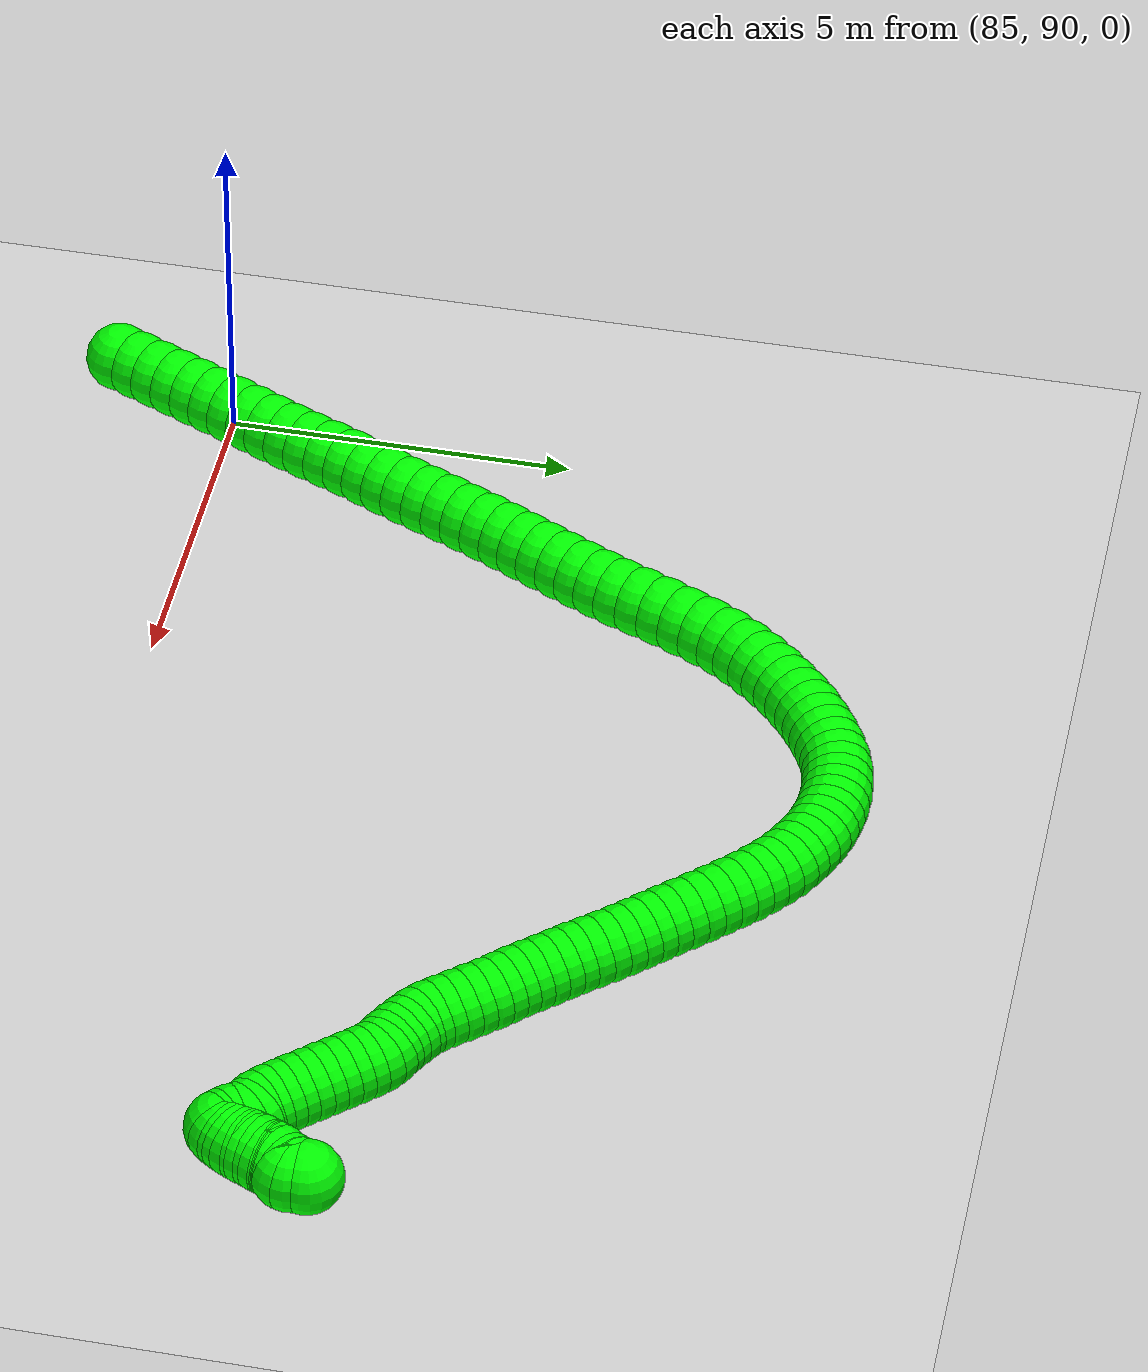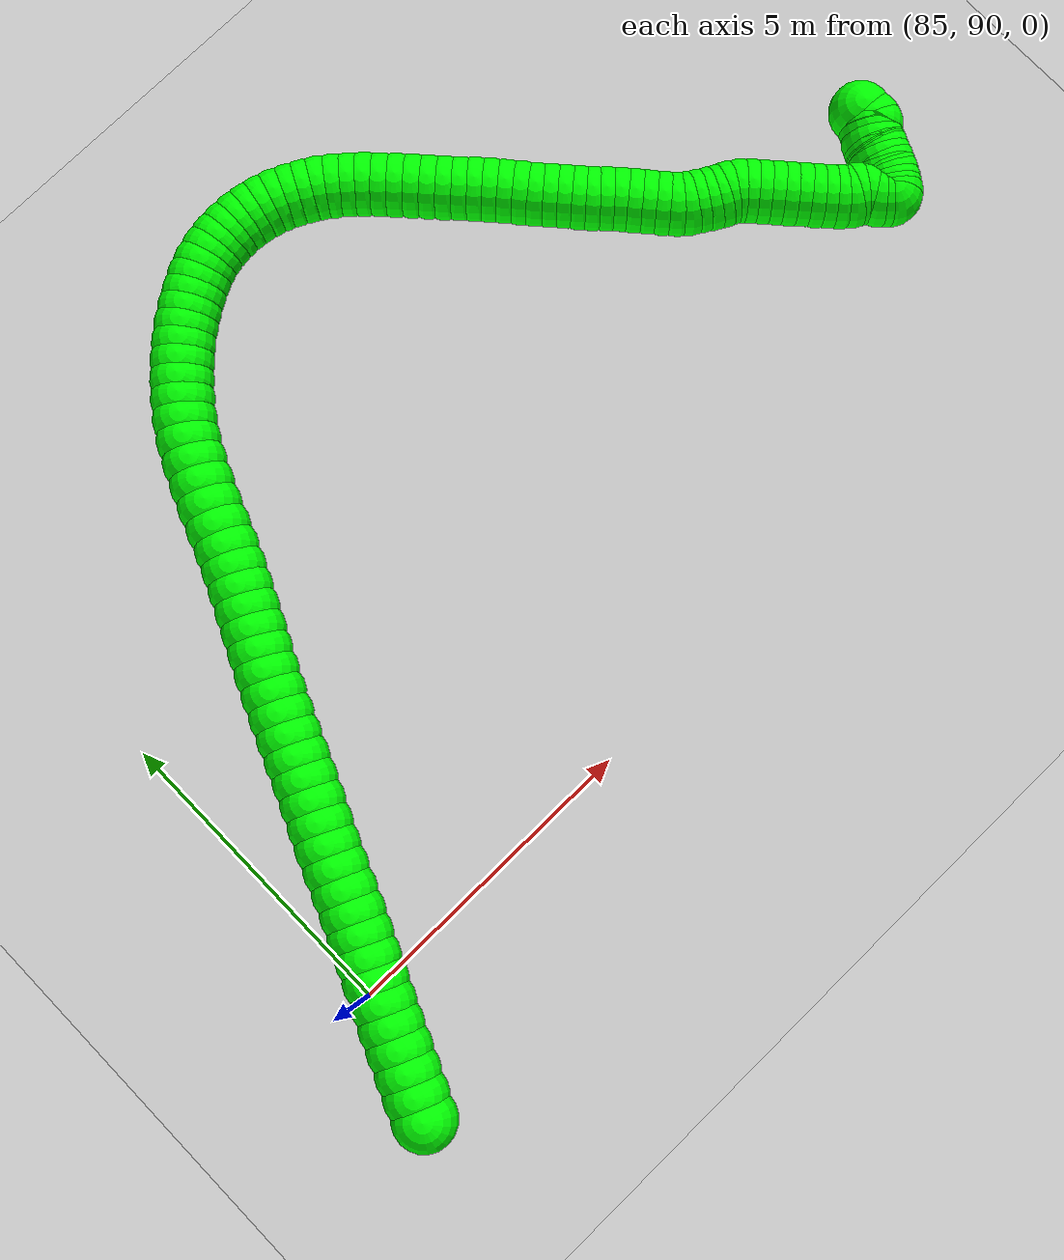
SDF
<sdf version="1.6">
 <world name="default">
  <include><uri>model://sun</uri></include>
  <include><uri>model://ground_plane</uri></include>
  <model name="marker_1">
   <static>true</static>
   <link name="link">
    <visual name="visual">
     <geometry><sphere><radius>0.5</radius></sphere></geometry>
     <material><ambient>0 1 0 1</ambient><diffuse>0 1 0 1</diffuse></material>
     <pose>100.0 94.5166298929436 0.5 0 0 0</pose>
    </visual>
   </link>
  </model>
  <model name="marker_2">
   <static>true</static>
   <link name="link">
    <visual name="visual">
     <geometry><sphere><radius>0.5</radius></sphere></geometry>
     <material><ambient>0 1 0 1</ambient><diffuse>0 1 0 1</diffuse></material>
     <pose>99.99839161802979 94.30661109748615 0.5 0 0 0</pose>
    </visual>
   </link>
  </model>
  <model name="marker_3">
   <static>true</static>
   <link name="link">
    <visual name="visual">
     <geometry><sphere><radius>0.5</radius></sphere></geometry>
     <material><ambient>0 1 0 1</ambient><diffuse>0 1 0 1</diffuse></material>
     <pose>99.97909103441992 94.25308490643219 0.5 0 0 0</pose>
    </visual>
   </link>
  </model>
  <model name="marker_4">
   <static>true</static>
   <link name="link">
    <visual name="visual">
     <geometry><sphere><radius>0.5</radius></sphere></geometry>
     <material><ambient>0 1 0 1</ambient><diffuse>0 1 0 1</diffuse></material>
     <pose>99.96415605901025 94.24654735637526 0.5 0 0 0</pose>
    </visual>
   </link>
  </model>
  <model name="marker_5">
   <static>true</static>
   <link name="link">
    <visual name="visual">
     <geometry><sphere><radius>0.5</radius></sphere></geometry>
     <material><ambient>0 1 0 1</ambient><diffuse>0 1 0 1</diffuse></material>
     <pose>99.95450576718899 94.24613875949943 0.5 0 0 0</pose>
    </visual>
   </link>
  </model>
  <model name="marker_6">
   <static>true</static>
   <link name="link">
    <visual name="visual">
     <geometry><sphere><radius>0.5</radius></sphere></geometry>
     <material><ambient>0 1 0 1</ambient><diffuse>0 1 0 1</diffuse></material>
     <pose>99.94439593768995 94.25594508457758 0.5 0 0 0</pose>
    </visual>
   </link>
  </model>
  <model name="marker_7">
   <static>true</static>
   <link name="link">
    <visual name="visual">
     <geometry><sphere><radius>0.5</radius></sphere></geometry>
     <material><ambient>0 1 0 1</ambient><diffuse>0 1 0 1</diffuse></material>
     <pose>99.93681356554934 94.25512789081864 0.5 0 0 0</pose>
    </visual>
   </link>
  </model>
  <model name="marker_8">
   <static>true</static>
   <link name="link">
    <visual name="visual">
     <geometry><sphere><radius>0.5</radius></sphere></geometry>
     <material><ambient>0 1 0 1</ambient><diffuse>0 1 0 1</diffuse></material>
     <pose>99.9577225311294 94.2506333251554 0.5 0 0 0</pose>
    </visual>
   </link>
  </model>
  <model name="marker_9">
   <static>true</static>
   <link name="link">
    <visual name="visual">
     <geometry><sphere><radius>0.5</radius></sphere></geometry>
     <material><ambient>0 1 0 1</ambient><diffuse>0 1 0 1</diffuse></material>
     <pose>99.95726299341896 94.2469559532511 0.5 0 0 0</pose>
    </visual>
   </link>
  </model>
  <model name="marker_10">
   <static>true</static>
   <link name="link">
    <visual name="visual">
     <geometry><sphere><radius>0.5</radius></sphere></geometry>
     <material><ambient>0 1 0 1</ambient><diffuse>0 1 0 1</diffuse></material>
     <pose>99.95473553602788 94.24286998447096 0.5 0 0 0</pose>
    </visual>
   </link>
  </model>
  <model name="marker_11">
   <static>true</static>
   <link name="link">
    <visual name="visual">
     <geometry><sphere><radius>0.5</radius></sphere></geometry>
     <material><ambient>0 1 0 1</ambient><diffuse>0 1 0 1</diffuse></material>
     <pose>99.94140894258841 94.25022472827956 0.5 0 0 0</pose>
    </visual>
   </link>
  </model>
  <model name="marker_12">
   <static>true</static>
   <link name="link">
    <visual name="visual">
     <geometry><sphere><radius>0.5</radius></sphere></geometry>
     <material><ambient>0 1 0 1</ambient><diffuse>0 1 0 1</diffuse></material>
     <pose>99.93796240980912 94.24818174388588 0.5 0 0 0</pose>
    </visual>
   </link>
  </model>
  <model name="marker_13">
   <static>true</static>
   <link name="link">
    <visual name="visual">
     <geometry><sphere><radius>0.5</radius></sphere></geometry>
     <material><ambient>0 1 0 1</ambient><diffuse>0 1 0 1</diffuse></material>
     <pose>99.936124259 94.24205279071202 0.5 0 0 0</pose>
    </visual>
   </link>
  </model>
  <model name="marker_14">
   <static>true</static>
   <link name="link">
    <visual name="visual">
     <geometry><sphere><radius>0.5</radius></sphere></geometry>
     <material><ambient>0 1 0 1</ambient><diffuse>0 1 0 1</diffuse></material>
     <pose>99.93152888192827 94.23755822505605 0.5 0 0 0</pose>
    </visual>
   </link>
  </model>
  <model name="marker_15">
   <static>true</static>
   <link name="link">
    <visual name="visual">
     <geometry><sphere><radius>0.5</radius></sphere></geometry>
     <material><ambient>0 1 0 1</ambient><diffuse>0 1 0 1</diffuse></material>
     <pose>99.92486558520854 94.22693470621898 0.5 0 0 0</pose>
    </visual>
   </link>
  </model>
  <model name="marker_16">
   <static>true</static>
   <link name="link">
    <visual name="visual">
     <geometry><sphere><radius>0.5</radius></sphere></geometry>
     <material><ambient>0 1 0 1</ambient><diffuse>0 1 0 1</diffuse></material>
     <pose>99.92164882126812 94.22775189997064 0.5 0 0 0</pose>
    </visual>
   </link>
  </model>
  <model name="marker_17">
   <static>true</static>
   <link name="link">
    <visual name="visual">
     <geometry><sphere><radius>0.5</radius></sphere></geometry>
     <material><ambient>0 1 0 1</ambient><diffuse>0 1 0 1</diffuse></material>
     <pose>99.91291760486773 94.21467679986404 0.5 0 0 0</pose>
    </visual>
   </link>
  </model>
  <model name="marker_18">
   <static>true</static>
   <link name="link">
    <visual name="visual">
     <geometry><sphere><radius>0.5</radius></sphere></geometry>
     <material><ambient>0 1 0 1</ambient><diffuse>0 1 0 1</diffuse></material>
     <pose>99.8012499425372 94.04837787038967 0.5 0 0 0</pose>
    </visual>
   </link>
  </model>
  <model name="marker_19">
   <static>true</static>
   <link name="link">
    <visual name="visual">
     <geometry><sphere><radius>0.5</radius></sphere></geometry>
     <material><ambient>0 1 0 1</ambient><diffuse>0 1 0 1</diffuse></material>
     <pose>99.75391755891708 93.93846531012187 0.5 0 0 0</pose>
    </visual>
   </link>
  </model>
  <model name="marker_20">
   <static>true</static>
   <link name="link">
    <visual name="visual">
     <geometry><sphere><radius>0.5</radius></sphere></geometry>
     <material><ambient>0 1 0 1</ambient><diffuse>0 1 0 1</diffuse></material>
     <pose>99.74380772941804 93.90986352863912 0.5 0 0 0</pose>
    </visual>
   </link>
  </model>
  <model name="marker_21">
   <static>true</static>
   <link name="link">
    <visual name="visual">
     <geometry><sphere><radius>0.5</radius></sphere></geometry>
     <material><ambient>0 1 0 1</ambient><diffuse>0 1 0 1</diffuse></material>
     <pose>99.74817333761823 93.9298847756785 0.5 0 0 0</pose>
    </visual>
   </link>
  </model>
  <model name="marker_22">
   <static>true</static>
   <link name="link">
    <visual name="visual">
     <geometry><sphere><radius>0.5</radius></sphere></geometry>
     <material><ambient>0 1 0 1</ambient><diffuse>0 1 0 1</diffuse></material>
     <pose>99.75575570975884 93.94009969763249 0.5 0 0 0</pose>
    </visual>
   </link>
  </model>
  <model name="marker_23">
   <static>true</static>
   <link name="link">
    <visual name="visual">
     <geometry><sphere><radius>0.5</radius></sphere></geometry>
     <material><ambient>0 1 0 1</ambient><diffuse>0 1 0 1</diffuse></material>
     <pose>99.75828316711728 93.9629811228245 0.5 0 0 0</pose>
    </visual>
   </link>
  </model>
  <model name="marker_24">
   <static>true</static>
   <link name="link">
    <visual name="visual">
     <geometry><sphere><radius>0.5</radius></sphere></geometry>
     <material><ambient>0 1 0 1</ambient><diffuse>0 1 0 1</diffuse></material>
     <pose>99.76058085563682 93.96788428536357 0.5 0 0 0</pose>
    </visual>
   </link>
  </model>
  <model name="marker_25">
   <static>true</static>
   <link name="link">
    <visual name="visual">
     <geometry><sphere><radius>0.5</radius></sphere></geometry>
     <material><ambient>0 1 0 1</ambient><diffuse>0 1 0 1</diffuse></material>
     <pose>99.76264877531746 93.96747568848048 0.5 0 0 0</pose>
    </visual>
   </link>
  </model>
  <model name="marker_26">
   <static>true</static>
   <link name="link">
    <visual name="visual">
     <geometry><sphere><radius>0.5</radius></sphere></geometry>
     <material><ambient>0 1 0 1</ambient><diffuse>0 1 0 1</diffuse></material>
     <pose>99.76264877531746 93.96706709160463 0.5 0 0 0</pose>
    </visual>
   </link>
  </model>
  <model name="marker_27">
   <static>true</static>
   <link name="link">
    <visual name="visual">
     <geometry><sphere><radius>0.5</radius></sphere></geometry>
     <material><ambient>0 1 0 1</ambient><diffuse>0 1 0 1</diffuse></material>
     <pose>99.76333808186679 93.97319604477848 0.5 0 0 0</pose>
    </visual>
   </link>
  </model>
  <model name="marker_28">
   <static>true</static>
   <link name="link">
    <visual name="visual">
     <geometry><sphere><radius>0.5</radius></sphere></geometry>
     <material><ambient>0 1 0 1</ambient><diffuse>0 1 0 1</diffuse></material>
     <pose>99.76609530809678 93.9736046416543 0.5 0 0 0</pose>
    </visual>
   </link>
  </model>
  <model name="marker_29">
   <static>true</static>
   <link name="link">
    <visual name="visual">
     <geometry><sphere><radius>0.5</radius></sphere></geometry>
     <material><ambient>0 1 0 1</ambient><diffuse>0 1 0 1</diffuse></material>
     <pose>99.76701438351766 93.97156165726787 0.5 0 0 0</pose>
    </visual>
   </link>
  </model>
  <model name="marker_30">
   <static>true</static>
   <link name="link">
    <visual name="visual">
     <geometry><sphere><radius>0.5</radius></sphere></geometry>
     <material><ambient>0 1 0 1</ambient><diffuse>0 1 0 1</diffuse></material>
     <pose>99.76678461467876 93.96911007599833 0.5 0 0 0</pose>
    </visual>
   </link>
  </model>
  <model name="marker_31">
   <static>true</static>
   <link name="link">
    <visual name="visual">
     <geometry><sphere><radius>0.5</radius></sphere></geometry>
     <material><ambient>0 1 0 1</ambient><diffuse>0 1 0 1</diffuse></material>
     <pose>99.767703690067 93.9719702541437 0.5 0 0 0</pose>
    </visual>
   </link>
  </model>
  <model name="marker_32">
   <static>true</static>
   <link name="link">
    <visual name="visual">
     <geometry><sphere><radius>0.5</radius></sphere></geometry>
     <material><ambient>0 1 0 1</ambient><diffuse>0 1 0 1</diffuse></material>
     <pose>99.67878314415827 93.7778867369455 0.5 0 0 0</pose>
    </visual>
   </link>
  </model>
  <model name="marker_33">
   <static>true</static>
   <link name="link">
    <visual name="visual">
     <geometry><sphere><radius>0.5</radius></sphere></geometry>
     <material><ambient>0 1 0 1</ambient><diffuse>0 1 0 1</diffuse></material>
     <pose>99.63604613757725 93.66919996731248 0.5 0 0 0</pose>
    </visual>
   </link>
  </model>
  <model name="marker_34">
   <static>true</static>
   <link name="link">
    <visual name="visual">
     <geometry><sphere><radius>0.5</radius></sphere></geometry>
     <material><ambient>0 1 0 1</ambient><diffuse>0 1 0 1</diffuse></material>
     <pose>99.6098524883761 93.62057693879035 0.5 0 0 0</pose>
    </visual>
   </link>
  </model>
  <model name="marker_35">
   <static>true</static>
   <link name="link">
    <visual name="visual">
     <geometry><sphere><radius>0.5</radius></sphere></geometry>
     <material><ambient>0 1 0 1</ambient><diffuse>0 1 0 1</diffuse></material>
     <pose>99.58894352279603 93.5739968946619 0.5 0 0 0</pose>
    </visual>
   </link>
  </model>
  <model name="marker_36">
   <static>true</static>
   <link name="link">
    <visual name="visual">
     <geometry><sphere><radius>0.5</radius></sphere></geometry>
     <material><ambient>0 1 0 1</ambient><diffuse>0 1 0 1</diffuse></material>
     <pose>99.55700565229604 93.50698700661825 0.5 0 0 0</pose>
    </visual>
   </link>
  </model>
  <model name="marker_37">
   <static>true</static>
   <link name="link">
    <visual name="visual">
     <geometry><sphere><radius>0.5</radius></sphere></geometry>
     <material><ambient>0 1 0 1</ambient><diffuse>0 1 0 1</diffuse></material>
     <pose>99.49795505720667 93.40442919015906 0.5 0 0 0</pose>
    </visual>
   </link>
  </model>
  <model name="marker_38">
   <static>true</static>
   <link name="link">
    <visual name="visual">
     <geometry><sphere><radius>0.5</radius></sphere></geometry>
     <material><ambient>0 1 0 1</ambient><diffuse>0 1 0 1</diffuse></material>
     <pose>99.45039290471502 93.33292473645217 0.5 0 0 0</pose>
    </visual>
   </link>
  </model>
  <model name="marker_39">
   <static>true</static>
   <link name="link">
    <visual name="visual">
     <geometry><sphere><radius>0.5</radius></sphere></geometry>
     <material><ambient>0 1 0 1</ambient><diffuse>0 1 0 1</diffuse></material>
     <pose>99.40627728503533 93.27000081718866 0.5 0 0 0</pose>
    </visual>
   </link>
  </model>
  <model name="marker_40">
   <static>true</static>
   <link name="link">
    <visual name="visual">
     <geometry><sphere><radius>0.5</radius></sphere></geometry>
     <material><ambient>0 1 0 1</ambient><diffuse>0 1 0 1</diffuse></material>
     <pose>99.36216166535563 93.22954972623407 0.5 0 0 0</pose>
    </visual>
   </link>
  </model>
  <model name="marker_41">
   <static>true</static>
   <link name="link">
    <visual name="visual">
     <geometry><sphere><radius>0.5</radius></sphere></geometry>
     <material><ambient>0 1 0 1</ambient><diffuse>0 1 0 1</diffuse></material>
     <pose>99.30586829649624 93.27939854539096 0.5 0 0 0</pose>
    </visual>
   </link>
  </model>
  <model name="marker_42">
   <static>true</static>
   <link name="link">
    <visual name="visual">
     <geometry><sphere><radius>0.5</radius></sphere></geometry>
     <material><ambient>0 1 0 1</ambient><diffuse>0 1 0 1</diffuse></material>
     <pose>99.21878590136399 93.36520388983924 0.5 0 0 0</pose>
    </visual>
   </link>
  </model>
  <model name="marker_43">
   <static>true</static>
   <link name="link">
    <visual name="visual">
     <geometry><sphere><radius>0.5</radius></sphere></geometry>
     <material><ambient>0 1 0 1</ambient><diffuse>0 1 0 1</diffuse></material>
     <pose>99.13170350626437 93.49472910027058 0.5 0 0 0</pose>
    </visual>
   </link>
  </model>
  <model name="marker_44">
   <static>true</static>
   <link name="link">
    <visual name="visual">
     <geometry><sphere><radius>0.5</radius></sphere></geometry>
     <material><ambient>0 1 0 1</ambient><diffuse>0 1 0 1</diffuse></material>
     <pose>99.01314277834256 93.58543760725065 0.5 0 0 0</pose>
    </visual>
   </link>
  </model>
  <model name="marker_45">
   <static>true</static>
   <link name="link">
    <visual name="visual">
     <geometry><sphere><radius>0.5</radius></sphere></geometry>
     <material><ambient>0 1 0 1</ambient><diffuse>0 1 0 1</diffuse></material>
     <pose>98.89343320619362 93.6491787202731 0.5 0 0 0</pose>
    </visual>
   </link>
  </model>
  <model name="marker_46">
   <static>true</static>
   <link name="link">
    <visual name="visual">
     <geometry><sphere><radius>0.5</radius></sphere></geometry>
     <material><ambient>0 1 0 1</ambient><diffuse>0 1 0 1</diffuse></material>
     <pose>98.77142594549248 93.75623110238827 0.5 0 0 0</pose>
    </visual>
   </link>
  </model>
  <model name="marker_47">
   <static>true</static>
   <link name="link">
    <visual name="visual">
     <geometry><sphere><radius>0.5</radius></sphere></geometry>
     <material><ambient>0 1 0 1</ambient><diffuse>0 1 0 1</diffuse></material>
     <pose>98.6452828454627 93.88902508784807 0.5 0 0 0</pose>
    </visual>
   </link>
  </model>
  <model name="marker_48">
   <static>true</static>
   <link name="link">
    <visual name="visual">
     <geometry><sphere><radius>0.5</radius></sphere></geometry>
     <material><ambient>0 1 0 1</ambient><diffuse>0 1 0 1</diffuse></material>
     <pose>98.51063829787144 94.03366838277245 0.5 0 0 0</pose>
    </visual>
   </link>
  </model>
  <model name="marker_49">
   <static>true</static>
   <link name="link">
    <visual name="visual">
     <geometry><sphere><radius>0.5</radius></sphere></geometry>
     <material><ambient>0 1 0 1</ambient><diffuse>0 1 0 1</diffuse></material>
     <pose>98.37530444373084 94.19138677780346 0.5 0 0 0</pose>
    </visual>
   </link>
  </model>
  <model name="marker_50">
   <static>true</static>
   <link name="link">
    <visual name="visual">
     <geometry><sphere><radius>0.5</radius></sphere></geometry>
     <material><ambient>0 1 0 1</ambient><diffuse>0 1 0 1</diffuse></material>
     <pose>98.23399659941984 94.34542780093015 0.5 0 0 0</pose>
    </visual>
   </link>
  </model>
  <model name="marker_51">
   <static>true</static>
   <link name="link">
    <visual name="visual">
     <geometry><sphere><radius>0.5</radius></sphere></geometry>
     <material><ambient>0 1 0 1</ambient><diffuse>0 1 0 1</diffuse></material>
     <pose>98.09636505672705 94.50437198659591 0.5 0 0 0</pose>
    </visual>
   </link>
  </model>
  <model name="marker_52">
   <static>true</static>
   <link name="link">
    <visual name="visual">
     <geometry><sphere><radius>0.5</radius></sphere></geometry>
     <material><ambient>0 1 0 1</ambient><diffuse>0 1 0 1</diffuse></material>
     <pose>97.95942282061624 94.65514423469415 0.5 0 0 0</pose>
    </visual>
   </link>
  </model>
  <model name="marker_53">
   <static>true</static>
   <link name="link">
    <visual name="visual">
     <geometry><sphere><radius>0.5</radius></sphere></geometry>
     <material><ambient>0 1 0 1</ambient><diffuse>0 1 0 1</diffuse></material>
     <pose>97.8259271173174 94.80101332025329 0.5 0 0 0</pose>
    </visual>
   </link>
  </model>
  <model name="marker_54">
   <static>true</static>
   <link name="link">
    <visual name="visual">
     <geometry><sphere><radius>0.5</radius></sphere></geometry>
     <material><ambient>0 1 0 1</ambient><diffuse>0 1 0 1</diffuse></material>
     <pose>97.69817563528476 94.92440957751079 0.5 0 0 0</pose>
    </visual>
   </link>
  </model>
  <model name="marker_55">
   <static>true</static>
   <link name="link">
    <visual name="visual">
     <geometry><sphere><radius>0.5</radius></sphere></geometry>
     <material><ambient>0 1 0 1</ambient><diffuse>0 1 0 1</diffuse></material>
     <pose>97.56559900737413 95.0122579063455 0.5 0 0 0</pose>
    </visual>
   </link>
  </model>
  <model name="marker_56">
   <static>true</static>
   <link name="link">
    <visual name="visual">
     <geometry><sphere><radius>0.5</radius></sphere></geometry>
     <material><ambient>0 1 0 1</ambient><diffuse>0 1 0 1</diffuse></material>
     <pose>97.42360185651381 95.07640761624378 0.5 0 0 0</pose>
    </visual>
   </link>
  </model>
  <model name="marker_57">
   <static>true</static>
   <link name="link">
    <visual name="visual">
     <geometry><sphere><radius>0.5</radius></sphere></geometry>
     <material><ambient>0 1 0 1</ambient><diffuse>0 1 0 1</diffuse></material>
     <pose>97.27838794171306 95.15567541063513 0.5 0 0 0</pose>
    </visual>
   </link>
  </model>
  <model name="marker_58">
   <static>true</static>
   <link name="link">
    <visual name="visual">
     <geometry><sphere><radius>0.5</radius></sphere></geometry>
     <material><ambient>0 1 0 1</ambient><diffuse>0 1 0 1</diffuse></material>
     <pose>97.13179541381365 95.24597532074662 0.5 0 0 0</pose>
    </visual>
   </link>
  </model>
  <model name="marker_59">
   <static>true</static>
   <link name="link">
    <visual name="visual">
     <geometry><sphere><radius>0.5</radius></sphere></geometry>
     <material><ambient>0 1 0 1</ambient><diffuse>0 1 0 1</diffuse></material>
     <pose>96.9806075088425 95.3391354090035 0.5 0 0 0</pose>
    </visual>
   </link>
  </model>
  <model name="marker_60">
   <static>true</static>
   <link name="link">
    <visual name="visual">
     <geometry><sphere><radius>0.5</radius></sphere></geometry>
     <material><ambient>0 1 0 1</ambient><diffuse>0 1 0 1</diffuse></material>
     <pose>96.83654243830152 95.46130587561898 0.5 0 0 0</pose>
    </visual>
   </link>
  </model>
  <model name="marker_61">
   <static>true</static>
   <link name="link">
    <visual name="visual">
     <geometry><sphere><radius>0.5</radius></sphere></geometry>
     <material><ambient>0 1 0 1</ambient><diffuse>0 1 0 1</diffuse></material>
     <pose>96.6963834382503 95.6182070768983 0.5 0 0 0</pose>
    </visual>
   </link>
  </model>
  <model name="marker_62">
   <static>true</static>
   <link name="link">
    <visual name="visual">
     <geometry><sphere><radius>0.5</radius></sphere></geometry>
     <material><ambient>0 1 0 1</ambient><diffuse>0 1 0 1</diffuse></material>
     <pose>96.55323744313019 95.78859197515281 0.5 0 0 0</pose>
    </visual>
   </link>
  </model>
  <model name="marker_63">
   <static>true</static>
   <link name="link">
    <visual name="visual">
     <geometry><sphere><radius>0.5</radius></sphere></geometry>
     <material><ambient>0 1 0 1</ambient><diffuse>0 1 0 1</diffuse></material>
     <pose>96.40825329716833 95.95652529214505 0.5 0 0 0</pose>
    </visual>
   </link>
  </model>
  <model name="marker_64">
   <static>true</static>
   <link name="link">
    <visual name="visual">
     <geometry><sphere><radius>0.5</radius></sphere></geometry>
     <material><ambient>0 1 0 1</ambient><diffuse>0 1 0 1</diffuse></material>
     <pose>96.2630393823676 96.12936177167636 0.5 0 0 0</pose>
    </visual>
   </link>
  </model>
  <model name="marker_65">
   <static>true</static>
   <link name="link">
    <visual name="visual">
     <geometry><sphere><radius>0.5</radius></sphere></geometry>
     <material><ambient>0 1 0 1</ambient><diffuse>0 1 0 1</diffuse></material>
     <pose>96.11323009052775 96.28626297294842 0.5 0 0 0</pose>
    </visual>
   </link>
  </model>
  <model name="marker_66">
   <static>true</static>
   <link name="link">
    <visual name="visual">
     <geometry><sphere><radius>0.5</radius></sphere></geometry>
     <material><ambient>0 1 0 1</ambient><diffuse>0 1 0 1</diffuse></material>
     <pose>95.96089334129682 96.44275557734466 0.5 0 0 0</pose>
    </visual>
   </link>
  </model>
  <model name="marker_67">
   <static>true</static>
   <link name="link">
    <visual name="visual">
     <geometry><sphere><radius>0.5</radius></sphere></geometry>
     <material><ambient>0 1 0 1</ambient><diffuse>0 1 0 1</diffuse></material>
     <pose>95.81728780846629 96.60333415052102 0.5 0 0 0</pose>
    </visual>
   </link>
  </model>
  <model name="marker_68">
   <static>true</static>
   <link name="link">
    <visual name="visual">
     <geometry><sphere><radius>0.5</radius></sphere></geometry>
     <material><ambient>0 1 0 1</ambient><diffuse>0 1 0 1</diffuse></material>
     <pose>95.6716143559551 96.77126746751325 0.5 0 0 0</pose>
    </visual>
   </link>
  </model>
  <model name="marker_69">
   <static>true</static>
   <link name="link">
    <visual name="visual">
     <geometry><sphere><radius>0.5</radius></sphere></geometry>
     <material><ambient>0 1 0 1</ambient><diffuse>0 1 0 1</diffuse></material>
     <pose>95.52134552640483 96.94042657514026 0.5 0 0 0</pose>
    </visual>
   </link>
  </model>
  <model name="marker_70">
   <static>true</static>
   <link name="link">
    <visual name="visual">
     <geometry><sphere><radius>0.5</radius></sphere></geometry>
     <material><ambient>0 1 0 1</ambient><diffuse>0 1 0 1</diffuse></material>
     <pose>95.36740039520369 97.11244586091264 0.5 0 0 0</pose>
    </visual>
   </link>
  </model>
  <model name="marker_71">
   <static>true</static>
   <link name="link">
    <visual name="visual">
     <geometry><sphere><radius>0.5</radius></sphere></geometry>
     <material><ambient>0 1 0 1</ambient><diffuse>0 1 0 1</diffuse></material>
     <pose>95.21667202794298 97.29631445615686 0.5 0 0 0</pose>
    </visual>
   </link>
  </model>
  <model name="marker_72">
   <static>true</static>
   <link name="link">
    <visual name="visual">
     <geometry><sphere><radius>0.5</radius></sphere></geometry>
     <material><ambient>0 1 0 1</ambient><diffuse>0 1 0 1</diffuse></material>
     <pose>95.06111851477165 97.48140884203585 0.5 0 0 0</pose>
    </visual>
   </link>
  </model>
  <model name="marker_73">
   <static>true</static>
   <link name="link">
    <visual name="visual">
     <geometry><sphere><radius>0.5</radius></sphere></geometry>
     <material><ambient>0 1 0 1</ambient><diffuse>0 1 0 1</diffuse></material>
     <pose>94.90303754420923 97.6636430497622 0.5 0 0 0</pose>
    </visual>
   </link>
  </model>
  <model name="marker_74">
   <static>true</static>
   <link name="link">
    <visual name="visual">
     <geometry><sphere><radius>0.5</radius></sphere></geometry>
     <material><ambient>0 1 0 1</ambient><diffuse>0 1 0 1</diffuse></material>
     <pose>94.7426588851599 97.83933970743888 0.5 0 0 0</pose>
    </visual>
   </link>
  </model>
  <model name="marker_75">
   <static>true</static>
   <link name="link">
    <visual name="visual">
     <geometry><sphere><radius>0.5</radius></sphere></geometry>
     <material><ambient>0 1 0 1</ambient><diffuse>0 1 0 1</diffuse></material>
     <pose>94.57929323100906 98.01258478384602 0.5 0 0 0</pose>
    </visual>
   </link>
  </model>
  <model name="marker_76">
   <static>true</static>
   <link name="link">
    <visual name="visual">
     <geometry><sphere><radius>0.5</radius></sphere></geometry>
     <material><ambient>0 1 0 1</ambient><diffuse>0 1 0 1</diffuse></material>
     <pose>94.41294058175669 98.18950723216473 0.5 0 0 0</pose>
    </visual>
   </link>
  </model>
  <model name="marker_77">
   <static>true</static>
   <link name="link">
    <visual name="visual">
     <geometry><sphere><radius>0.5</radius></sphere></geometry>
     <material><ambient>0 1 0 1</ambient><diffuse>0 1 0 1</diffuse></material>
     <pose>94.24520931940566 98.37419302116062 0.5 0 0 0</pose>
    </visual>
   </link>
  </model>
  <model name="marker_78">
   <static>true</static>
   <link name="link">
    <visual name="visual">
     <geometry><sphere><radius>0.5</radius></sphere></geometry>
     <material><ambient>0 1 0 1</ambient><diffuse>0 1 0 1</diffuse></material>
     <pose>94.07334221772598 98.56337337582701 0.5 0 0 0</pose>
    </visual>
   </link>
  </model>
  <model name="marker_79">
   <static>true</static>
   <link name="link">
    <visual name="visual">
     <geometry><sphere><radius>0.5</radius></sphere></geometry>
     <material><ambient>0 1 0 1</ambient><diffuse>0 1 0 1</diffuse></material>
     <pose>93.89756904552388 98.75051074609243 0.5 0 0 0</pose>
    </visual>
   </link>
  </model>
  <model name="marker_80">
   <static>true</static>
   <link name="link">
    <visual name="visual">
     <geometry><sphere><radius>0.5</radius></sphere></geometry>
     <material><ambient>0 1 0 1</ambient><diffuse>0 1 0 1</diffuse></material>
     <pose>93.72317448645313 98.93397074446082 0.5 0 0 0</pose>
    </visual>
   </link>
  </model>
  <model name="marker_81">
   <static>true</static>
   <link name="link">
    <visual name="visual">
     <geometry><sphere><radius>0.5</radius></sphere></geometry>
     <material><ambient>0 1 0 1</ambient><diffuse>0 1 0 1</diffuse></material>
     <pose>93.54832038967193 99.1113017896481 0.5 0 0 0</pose>
    </visual>
   </link>
  </model>
  <model name="marker_82">
   <static>true</static>
   <link name="link">
    <visual name="visual">
     <geometry><sphere><radius>0.5</radius></sphere></geometry>
     <material><ambient>0 1 0 1</ambient><diffuse>0 1 0 1</diffuse></material>
     <pose>93.36956022240096 99.27351475034234 0.5 0 0 0</pose>
    </visual>
   </link>
  </model>
  <model name="marker_83">
   <static>true</static>
   <link name="link">
    <visual name="visual">
     <geometry><sphere><radius>0.5</radius></sphere></geometry>
     <material><ambient>0 1 0 1</ambient><diffuse>0 1 0 1</diffuse></material>
     <pose>93.18804282890002 99.42469559532366 0.5 0 0 0</pose>
    </visual>
   </link>
  </model>
  <model name="marker_84">
   <static>true</static>
   <link name="link">
    <visual name="visual">
     <geometry><sphere><radius>0.5</radius></sphere></geometry>
     <material><ambient>0 1 0 1</ambient><diffuse>0 1 0 1</diffuse></material>
     <pose>93.00101098293912 99.56034975892157 0.5 0 0 0</pose>
    </visual>
   </link>
  </model>
  <model name="marker_85">
   <static>true</static>
   <link name="link">
    <visual name="visual">
     <geometry><sphere><radius>0.5</radius></sphere></geometry>
     <material><ambient>0 1 0 1</ambient><diffuse>0 1 0 1</diffuse></material>
     <pose>92.80501815173896 99.67067091607245 0.5 0 0 0</pose>
    </visual>
   </link>
  </model>
  <model name="marker_86">
   <static>true</static>
   <link name="link">
    <visual name="visual">
     <geometry><sphere><radius>0.5</radius></sphere></geometry>
     <material><ambient>0 1 0 1</ambient><diffuse>0 1 0 1</diffuse></material>
     <pose>92.6048894811775 99.77322873253165 0.5 0 0 0</pose>
    </visual>
   </link>
  </model>
  <model name="marker_87">
   <static>true</static>
   <link name="link">
    <visual name="visual">
     <geometry><sphere><radius>0.5</radius></sphere></geometry>
     <material><ambient>0 1 0 1</ambient><diffuse>0 1 0 1</diffuse></material>
     <pose>92.39625936308718 99.86312004576006 0.5 0 0 0</pose>
    </visual>
   </link>
  </model>
  <model name="marker_88">
   <static>true</static>
   <link name="link">
    <visual name="visual">
     <geometry><sphere><radius>0.5</radius></sphere></geometry>
     <material><ambient>0 1 0 1</ambient><diffuse>0 1 0 1</diffuse></material>
     <pose>92.18188502366537 99.9284955462931 0.5 0 0 0</pose>
    </visual>
   </link>
  </model>
  <model name="marker_89">
   <static>true</static>
   <link name="link">
    <visual name="visual">
     <geometry><sphere><radius>0.5</radius></sphere></geometry>
     <material><ambient>0 1 0 1</ambient><diffuse>0 1 0 1</diffuse></material>
     <pose>91.96544276456291 99.97180681539308 0.5 0 0 0</pose>
    </visual>
   </link>
  </model>
  <model name="marker_90">
   <static>true</static>
   <link name="link">
    <visual name="visual">
     <geometry><sphere><radius>0.5</radius></sphere></geometry>
     <material><ambient>0 1 0 1</ambient><diffuse>0 1 0 1</diffuse></material>
     <pose>91.74739212352289 99.99713982184737 0.5 0 0 0</pose>
    </visual>
   </link>
  </model>
  <model name="marker_91">
   <static>true</static>
   <link name="link">
    <visual name="visual">
     <geometry><sphere><radius>0.5</radius></sphere></geometry>
     <material><ambient>0 1 0 1</ambient><diffuse>0 1 0 1</diffuse></material>
     <pose>91.52750333164111 100.0 0.5 0 0 0</pose>
    </visual>
   </link>
  </model>
  <model name="marker_92">
   <static>true</static>
   <link name="link">
    <visual name="visual">
     <geometry><sphere><radius>0.5</radius></sphere></geometry>
     <material><ambient>0 1 0 1</ambient><diffuse>0 1 0 1</diffuse></material>
     <pose>91.30393823810849 99.98161314047123 0.5 0 0 0</pose>
    </visual>
   </link>
  </model>
  <model name="marker_93">
   <static>true</static>
   <link name="link">
    <visual name="visual">
     <geometry><sphere><radius>0.5</radius></sphere></geometry>
     <material><ambient>0 1 0 1</ambient><diffuse>0 1 0 1</diffuse></material>
     <pose>91.07922430034874 99.94075345264079 0.5 0 0 0</pose>
    </visual>
   </link>
  </model>
  <model name="marker_94">
   <static>true</static>
   <link name="link">
    <visual name="visual">
     <geometry><sphere><radius>0.5</radius></sphere></geometry>
     <material><ambient>0 1 0 1</ambient><diffuse>0 1 0 1</diffuse></material>
     <pose>90.85474013142787 99.8712919833276 0.5 0 0 0</pose>
    </visual>
   </link>
  </model>
  <model name="marker_95">
   <static>true</static>
   <link name="link">
    <visual name="visual">
     <geometry><sphere><radius>0.5</radius></sphere></geometry>
     <material><ambient>0 1 0 1</ambient><diffuse>0 1 0 1</diffuse></material>
     <pose>90.63094526905635 99.76995995750318 0.5 0 0 0</pose>
    </visual>
   </link>
  </model>
  <model name="marker_96">
   <static>true</static>
   <link name="link">
    <visual name="visual">
     <geometry><sphere><radius>0.5</radius></sphere></geometry>
     <material><ambient>0 1 0 1</ambient><diffuse>0 1 0 1</diffuse></material>
     <pose>90.41174578372392 99.64697229712878 0.5 0 0 0</pose>
    </visual>
   </link>
  </model>
  <model name="marker_97">
   <static>true</static>
   <link name="link">
    <visual name="visual">
     <geometry><sphere><radius>0.5</radius></sphere></geometry>
     <material><ambient>0 1 0 1</ambient><diffuse>0 1 0 1</diffuse></material>
     <pose>90.19185699184214 99.50723216474347 0.5 0 0 0</pose>
    </visual>
   </link>
  </model>
  <model name="marker_98">
   <static>true</static>
   <link name="link">
    <visual name="visual">
     <geometry><sphere><radius>0.5</radius></sphere></geometry>
     <material><ambient>0 1 0 1</ambient><diffuse>0 1 0 1</diffuse></material>
     <pose>89.97449565735145 99.35073956034724 0.5 0 0 0</pose>
    </visual>
   </link>
  </model>
  <model name="marker_99">
   <static>true</static>
   <link name="link">
    <visual name="visual">
     <geometry><sphere><radius>0.5</radius></sphere></geometry>
     <material><ambient>0 1 0 1</ambient><diffuse>0 1 0 1</diffuse></material>
     <pose>89.76104039335053 99.17013974013148 0.5 0 0 0</pose>
    </visual>
   </link>
  </model>
  <model name="marker_100">
   <static>true</static>
   <link name="link">
    <visual name="visual">
     <geometry><sphere><radius>0.5</radius></sphere></geometry>
     <material><ambient>0 1 0 1</ambient><diffuse>0 1 0 1</diffuse></material>
     <pose>89.5510316621289 98.96870147911741 0.5 0 0 0</pose>
    </visual>
   </link>
  </model>
  <model name="marker_101">
   <static>true</static>
   <link name="link">
    <visual name="visual">
     <geometry><sphere><radius>0.5</radius></sphere></geometry>
     <material><ambient>0 1 0 1</ambient><diffuse>0 1 0 1</diffuse></material>
     <pose>89.34309085058793 98.75091934297554 0.5 0 0 0</pose>
    </visual>
   </link>
  </model>
  <model name="marker_102">
   <static>true</static>
   <link name="link">
    <visual name="visual">
     <geometry><sphere><radius>0.5</radius></sphere></geometry>
     <material><ambient>0 1 0 1</ambient><diffuse>0 1 0 1</diffuse></material>
     <pose>89.14709801938776 98.51679333169857 0.5 0 0 0</pose>
    </visual>
   </link>
  </model>
  <model name="marker_103">
   <static>true</static>
   <link name="link">
    <visual name="visual">
     <geometry><sphere><radius>0.5</radius></sphere></geometry>
     <material><ambient>0 1 0 1</ambient><diffuse>0 1 0 1</diffuse></material>
     <pose>88.95455172096689 98.26060308898853 0.5 0 0 0</pose>
    </visual>
   </link>
  </model>
  <model name="marker_104">
   <static>true</static>
   <link name="link">
    <visual name="visual">
     <geometry><sphere><radius>0.5</radius></sphere></geometry>
     <material><ambient>0 1 0 1</ambient><diffuse>0 1 0 1</diffuse></material>
     <pose>88.77487247827506 97.97540246791989 0.5 0 0 0</pose>
    </visual>
   </link>
  </model>
  <model name="marker_105">
   <static>true</static>
   <link name="link">
    <visual name="visual">
     <geometry><sphere><radius>0.5</radius></sphere></geometry>
     <material><ambient>0 1 0 1</ambient><diffuse>0 1 0 1</diffuse></material>
     <pose>88.61380451264375 97.66323445288636 0.5 0 0 0</pose>
    </visual>
   </link>
  </model>
  <model name="marker_106">
   <static>true</static>
   <link name="link">
    <visual name="visual">
     <geometry><sphere><radius>0.5</radius></sphere></geometry>
     <material><ambient>0 1 0 1</ambient><diffuse>0 1 0 1</diffuse></material>
     <pose>88.46330591425459 97.33472256271776 0.5 0 0 0</pose>
    </visual>
   </link>
  </model>
  <model name="marker_107">
   <static>true</static>
   <link name="link">
    <visual name="visual">
     <geometry><sphere><radius>0.5</radius></sphere></geometry>
     <material><ambient>0 1 0 1</ambient><diffuse>0 1 0 1</diffuse></material>
     <pose>88.31855153713163 97.0000817193753 0.5 0 0 0</pose>
    </visual>
   </link>
  </model>
  <model name="marker_108">
   <static>true</static>
   <link name="link">
    <visual name="visual">
     <geometry><sphere><radius>0.5</radius></sphere></geometry>
     <material><ambient>0 1 0 1</ambient><diffuse>0 1 0 1</diffuse></material>
     <pose>88.18505583383278 96.66298929475607 0.5 0 0 0</pose>
    </visual>
   </link>
  </model>
  <model name="marker_109">
   <static>true</static>
   <link name="link">
    <visual name="visual">
     <geometry><sphere><radius>0.5</radius></sphere></geometry>
     <material><ambient>0 1 0 1</ambient><diffuse>0 1 0 1</diffuse></material>
     <pose>88.05615550754038 96.33243442020103 0.5 0 0 0</pose>
    </visual>
   </link>
  </model>
  <model name="marker_110">
   <static>true</static>
   <link name="link">
    <visual name="visual">
     <geometry><sphere><radius>0.5</radius></sphere></geometry>
     <material><ambient>0 1 0 1</ambient><diffuse>0 1 0 1</diffuse></material>
     <pose>87.92564679931041 96.02925553648672 0.5 0 0 0</pose>
    </visual>
   </link>
  </model>
  <model name="marker_111">
   <static>true</static>
   <link name="link">
    <visual name="visual">
     <geometry><sphere><radius>0.5</radius></sphere></geometry>
     <material><ambient>0 1 0 1</ambient><diffuse>0 1 0 1</diffuse></material>
     <pose>87.7868664123905 95.72811963716609 0.5 0 0 0</pose>
    </visual>
   </link>
  </model>
  <model name="marker_112">
   <static>true</static>
   <link name="link">
    <visual name="visual">
     <geometry><sphere><radius>0.5</radius></sphere></geometry>
     <material><ambient>0 1 0 1</ambient><diffuse>0 1 0 1</diffuse></material>
     <pose>87.64417995494817 95.42820952847299 0.5 0 0 0</pose>
    </visual>
   </link>
  </model>
  <model name="marker_113">
   <static>true</static>
   <link name="link">
    <visual name="visual">
     <geometry><sphere><radius>0.5</radius></sphere></geometry>
     <material><ambient>0 1 0 1</ambient><diffuse>0 1 0 1</diffuse></material>
     <pose>87.49896604014744 95.124213451007 0.5 0 0 0</pose>
    </visual>
   </link>
  </model>
  <model name="marker_114">
   <static>true</static>
   <link name="link">
    <visual name="visual">
     <geometry><sphere><radius>0.5</radius></sphere></geometry>
     <material><ambient>0 1 0 1</ambient><diffuse>0 1 0 1</diffuse></material>
     <pose>87.3509948991167 94.82226035792745 0.5 0 0 0</pose>
    </visual>
   </link>
  </model>
  <model name="marker_115">
   <static>true</static>
   <link name="link">
    <visual name="visual">
     <geometry><sphere><radius>0.5</radius></sphere></geometry>
     <material><ambient>0 1 0 1</ambient><diffuse>0 1 0 1</diffuse></material>
     <pose>87.20486190892773 94.52071586173099 0.5 0 0 0</pose>
    </visual>
   </link>
  </model>
  <model name="marker_116">
   <static>true</static>
   <link name="link">
    <visual name="visual">
     <geometry><sphere><radius>0.5</radius></sphere></geometry>
     <material><ambient>0 1 0 1</ambient><diffuse>0 1 0 1</diffuse></material>
     <pose>87.06171591377498 94.20977363732497 0.5 0 0 0</pose>
    </visual>
   </link>
  </model>
  <model name="marker_117">
   <static>true</static>
   <link name="link">
    <visual name="visual">
     <geometry><sphere><radius>0.5</radius></sphere></geometry>
     <material><ambient>0 1 0 1</ambient><diffuse>0 1 0 1</diffuse></material>
     <pose>86.92132714488486 93.89147666911761 0.5 0 0 0</pose>
    </visual>
   </link>
  </model>
  <model name="marker_118">
   <static>true</static>
   <link name="link">
    <visual name="visual">
     <geometry><sphere><radius>0.5</radius></sphere></geometry>
     <material><ambient>0 1 0 1</ambient><diffuse>0 1 0 1</diffuse></material>
     <pose>86.78323606451427 93.57563128217251 0.5 0 0 0</pose>
    </visual>
   </link>
  </model>
  <model name="marker_119">
   <static>true</static>
   <link name="link">
    <visual name="visual">
     <geometry><sphere><radius>0.5</radius></sphere></geometry>
     <material><ambient>0 1 0 1</ambient><diffuse>0 1 0 1</diffuse></material>
     <pose>86.64951059234389 93.25774291084097 0.5 0 0 0</pose>
    </visual>
   </link>
  </model>
  <model name="marker_120">
   <static>true</static>
   <link name="link">
    <visual name="visual">
     <geometry><sphere><radius>0.5</radius></sphere></geometry>
     <material><ambient>0 1 0 1</ambient><diffuse>0 1 0 1</diffuse></material>
     <pose>86.51417673820329 92.93781155511574 0.5 0 0 0</pose>
    </visual>
   </link>
  </model>
  <model name="marker_121">
   <static>true</static>
   <link name="link">
    <visual name="visual">
     <geometry><sphere><radius>0.5</radius></sphere></geometry>
     <material><ambient>0 1 0 1</ambient><diffuse>0 1 0 1</diffuse></material>
     <pose>86.37378796928051 92.62155757129482 0.5 0 0 0</pose>
    </visual>
   </link>
  </model>
  <model name="marker_122">
   <static>true</static>
   <link name="link">
    <visual name="visual">
     <geometry><sphere><radius>0.5</radius></sphere></geometry>
     <material><ambient>0 1 0 1</ambient><diffuse>0 1 0 1</diffuse></material>
     <pose>86.23064197416042 92.30612078123282 0.5 0 0 0</pose>
    </visual>
   </link>
  </model>
  <model name="marker_123">
   <static>true</static>
   <link name="link">
    <visual name="visual">
     <geometry><sphere><radius>0.5</radius></sphere></geometry>
     <material><ambient>0 1 0 1</ambient><diffuse>0 1 0 1</diffuse></material>
     <pose>86.08933412984942 91.99068399117083 0.5 0 0 0</pose>
    </visual>
   </link>
  </model>
  <model name="marker_124">
   <static>true</static>
   <link name="link">
    <visual name="visual">
     <geometry><sphere><radius>0.5</radius></sphere></geometry>
     <material><ambient>0 1 0 1</ambient><diffuse>0 1 0 1</diffuse></material>
     <pose>85.95514911996858 91.66830105417606 0.5 0 0 0</pose>
    </visual>
   </link>
  </model>
  <model name="marker_125">
   <static>true</static>
   <link name="link">
    <visual name="visual">
     <geometry><sphere><radius>0.5</radius></sphere></geometry>
     <material><ambient>0 1 0 1</ambient><diffuse>0 1 0 1</diffuse></material>
     <pose>85.82234272321908 91.34142355151806 0.5 0 0 0</pose>
    </visual>
   </link>
  </model>
  <model name="marker_126">
   <static>true</static>
   <link name="link">
    <visual name="visual">
     <geometry><sphere><radius>0.5</radius></sphere></geometry>
     <material><ambient>0 1 0 1</ambient><diffuse>0 1 0 1</diffuse></material>
     <pose>85.68976609530846 91.026803955215 0.5 0 0 0</pose>
    </visual>
   </link>
  </model>
  <model name="marker_127">
   <static>true</static>
   <link name="link">
    <visual name="visual">
     <geometry><sphere><radius>0.5</radius></sphere></geometry>
     <material><ambient>0 1 0 1</ambient><diffuse>0 1 0 1</diffuse></material>
     <pose>85.55144524606634 90.71545313393314 0.5 0 0 0</pose>
    </visual>
   </link>
  </model>
  <model name="marker_128">
   <static>true</static>
   <link name="link">
    <visual name="visual">
     <geometry><sphere><radius>0.5</radius></sphere></geometry>
     <material><ambient>0 1 0 1</ambient><diffuse>0 1 0 1</diffuse></material>
     <pose>85.40898855749558 90.40451090953438 0.5 0 0 0</pose>
    </visual>
   </link>
  </model>
  <model name="marker_129">
   <static>true</static>
   <link name="link">
    <visual name="visual">
     <geometry><sphere><radius>0.5</radius></sphere></geometry>
     <material><ambient>0 1 0 1</ambient><diffuse>0 1 0 1</diffuse></material>
     <pose>85.2663021000859 90.08989131323132 0.5 0 0 0</pose>
    </visual>
   </link>
  </model>
  <model name="marker_130">
   <static>true</static>
   <link name="link">
    <visual name="visual">
     <geometry><sphere><radius>0.5</radius></sphere></geometry>
     <material><ambient>0 1 0 1</ambient><diffuse>0 1 0 1</diffuse></material>
     <pose>85.12384541151513 89.77404592628623 0.5 0 0 0</pose>
    </visual>
   </link>
  </model>
  <model name="marker_131">
   <static>true</static>
   <link name="link">
    <visual name="visual">
     <geometry><sphere><radius>0.5</radius></sphere></geometry>
     <material><ambient>0 1 0 1</ambient><diffuse>0 1 0 1</diffuse></material>
     <pose>84.98506502456257 89.45983492685899 0.5 0 0 0</pose>
    </visual>
   </link>
  </model>
  <model name="marker_132">
   <static>true</static>
   <link name="link">
    <visual name="visual">
     <geometry><sphere><radius>0.5</radius></sphere></geometry>
     <material><ambient>0 1 0 1</ambient><diffuse>0 1 0 1</diffuse></material>
     <pose>84.84766325077398 89.14112936176853 0.5 0 0 0</pose>
    </visual>
   </link>
  </model>
  <model name="marker_133">
   <static>true</static>
   <link name="link">
    <visual name="visual">
     <geometry><sphere><radius>0.5</radius></sphere></geometry>
     <material><ambient>0 1 0 1</ambient><diffuse>0 1 0 1</diffuse></material>
     <pose>84.70704471301231 88.81792923101483 0.5 0 0 0</pose>
    </visual>
   </link>
  </model>
  <model name="marker_134">
   <static>true</static>
   <link name="link">
    <visual name="visual">
     <geometry><sphere><radius>0.5</radius></sphere></geometry>
     <material><ambient>0 1 0 1</ambient><diffuse>0 1 0 1</diffuse></material>
     <pose>84.56527733099087 88.49391190650945 0.5 0 0 0</pose>
    </visual>
   </link>
  </model>
  <model name="marker_135">
   <static>true</static>
   <link name="link">
    <visual name="visual">
     <geometry><sphere><radius>0.5</radius></sphere></geometry>
     <material><ambient>0 1 0 1</ambient><diffuse>0 1 0 1</diffuse></material>
     <pose>84.42787555716963 88.17071177576302 0.5 0 0 0</pose>
    </visual>
   </link>
  </model>
 </world>
</sdf>
